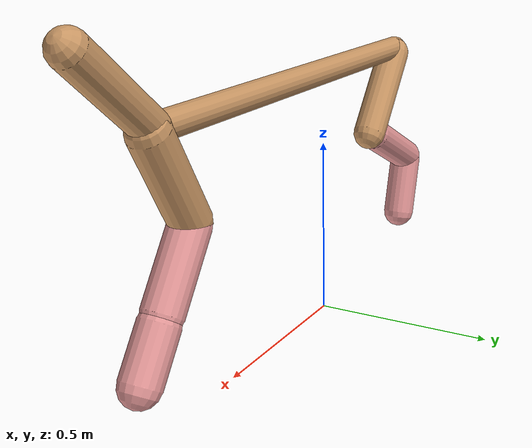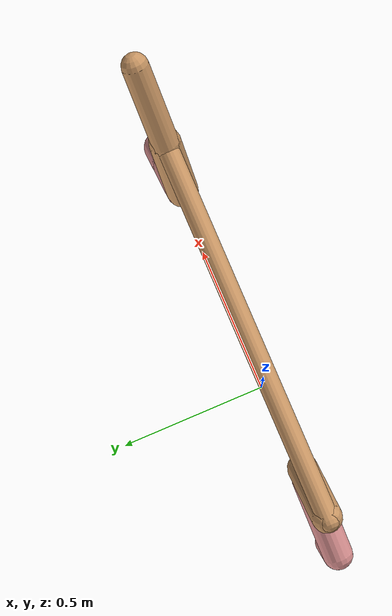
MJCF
<mujoco model="cheetah">
  <compiler angle="radian" coordinate="local" inertiafromgeom="true" settotalmass="14" />
  <default>
    <joint armature=".1" damping=".01" limited="true" solimplimit="0 .8 .03" solreflimit=".02 1" stiffness="8" />
    <geom conaffinity="0" condim="3" contype="1" friction="0.8 .1 .1" rgba="0.8 0.6 .4 1" solimp="0.0 0.8 0.01" solref="0.02 1" />
    <motor ctrllimited="true" ctrlrange="-1 1" />
  </default>
  <size nstack="300000" nuser_geom="1" />
  <option gravity="0 0 -9.81" timestep="0.01" />
  <worldbody>
    <body name="torso" pos="0.0 0.0 0.7051383023437523">
      <joint armature="0" axis="1 0 0" damping="0" limited="false" name="ignorex" pos="0 0 0" stiffness="0" type="slide" />
      <joint armature="0" axis="0 0 1" damping="0" limited="false" name="ignorez" pos="0 0 0" stiffness="0" type="slide" />
      <joint armature="0" axis="0 1 0" damping="0" limited="false" name="ignorey" pos="0 0 0" stiffness="0" type="hinge" />
      <geom fromto="-0.5 0.0 0.0 0.7913574973439901 0.0 0.0" name="torso" size="0.034554749579616004" type="capsule" />
      <geom axisangle="0 1 0 .87" name="head" pos="0.8913574973439901 0.0 0.1" size="0.04416230074059939 0.15" type="capsule" />

      <body name="bthigh" pos="-.5 0 0">
        <joint axis="0 1 0" damping="6" name="bthigh" pos="0 0 0" range="-.52 1.05" stiffness="240" type="hinge" />
        <geom axisangle="0 1 0 -3.8" name="bthigh" pos="0.09945653879514801 0.0 -0.12929350043369242" size="0.048848899584383154 0.14410865735075" type="capsule" />
        <body name="bshin" pos="0.15891307759029602 0.0 -0.24858700086738483">
          <joint axis="0 1 0" damping="4.5" name="bshin" pos="0 0 0" range="-.785 .785" stiffness="180" type="hinge" />
          <geom axisangle="0 1 0 -2.03" name="bshin" pos="-0.1391752678255306 0.0 -0.0695876339127653" rgba="0.9 0.6 0.6 1" size="0.048848899584383154 0.1490779213973276" type="capsule" />
          <body name="bfoot" pos="-0.2783505356510612 0.0 -0.1391752678255306">
            <joint axis="0 1 0" damping="3" name="bfoot" pos="0 0 0" range="-.4 .785" stiffness="120" type="hinge" />
            <geom axisangle="0 1 0 -.27" name="bfoot" pos="0.02982926697954044 0.0 -0.09644796323384743" rgba="0.9 0.6 0.6 1" size="0.048848899584383154 0.09342216407565863" type="capsule" />
            <inertial mass="10" />
          </body>
        </body>
      </body>
      <body name="fthigh" pos="0.7913574973439901 0.0 0.0">
        <joint axis="0 1 0" damping="4.5" name="fthigh" pos="0 0 0" range="-1.5 0.8" stiffness="180" type="hinge" />
        <geom axisangle="0 1 0 .52" name="fthigh" pos="-0.0703601909438244 0.0 -0.12061747018941323" size="0.05189721773497533 0.13371484750179818" type="capsule" />
        <body name="fshin" pos="-0.1407203818876488 0.0 -0.24123494037882645">
          <joint axis="0 1 0" damping="3" name="fshin" pos="0 0 0" range="-1.2 1.1" stiffness="120" type="hinge" />
          <geom axisangle="0 1 0 -.6" name="fshin" pos="0.06533357041152377 0.0 -0.09046186672364828" rgba="0.9 0.6 0.6 1" size="0.05189721773497533 0.10656972808413989" type="capsule" />
          <body name="ffoot" pos="0.13066714082304753 0.0 -0.18092373344729656">
            <joint axis="0 1 0" damping="1.5" name="ffoot" pos="0 0 0" range="-3.1 -0.3" stiffness="60" type="hinge" />
            <geom axisangle="0 1 0 -.6" name="ffoot" pos="0.04520345221748887 0.0 -0.07031648122720492" rgba="0.9 0.6 0.6 1" size="0.05189721773497533 0.0703762355272622" type="capsule" />
            <inertial mass="10" />
          </body>
        </body>
      </body>
    </body>
  </worldbody>
  <actuator>
    <motor gear="120" joint="bthigh" name="bthigh" />
    <motor gear="90" joint="bshin" name="bshin" />
    <motor gear="60" joint="bfoot" name="bfoot" />
    <motor gear="120" joint="fthigh" name="fthigh" />
    <motor gear="60" joint="fshin" name="fshin" />
    <motor gear="30" joint="ffoot" name="ffoot" />
  </actuator>
</mujoco>
